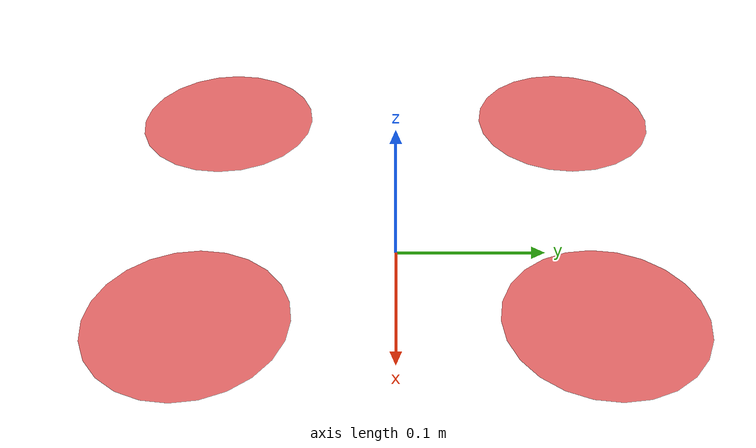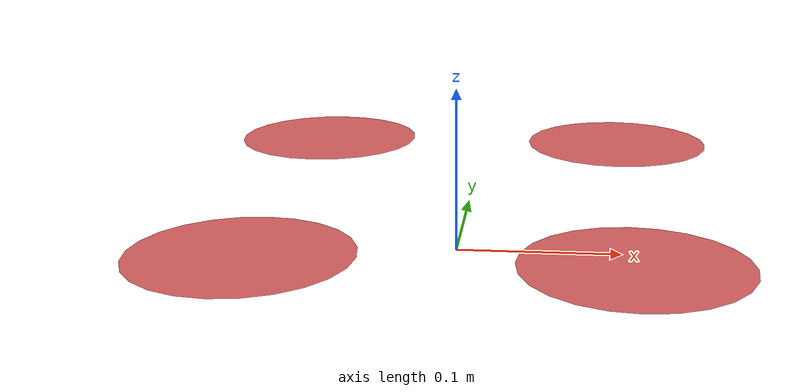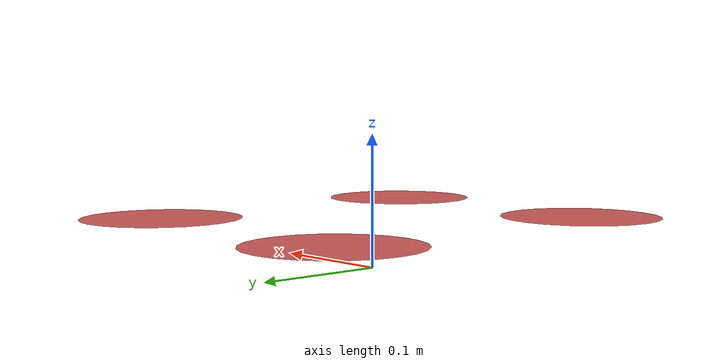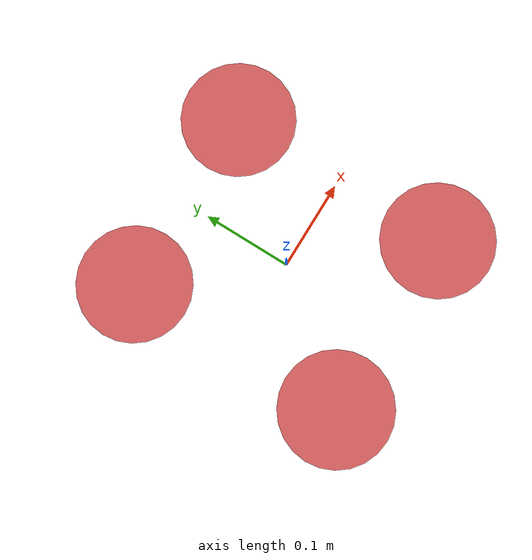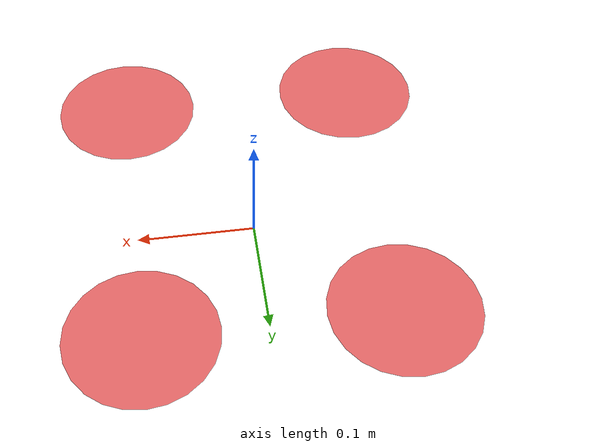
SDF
<?xml version="1.0"?>
<sdf version="1.6">
  <model name="uav">

    <plugin name="wind_plugin" filename="libgazebo_ros_force.so">
      <link_name>motor_0_link</link_name>
      <force_frame>world</force_frame>
      <topicName>wind</topicName>
      <force>6.0 0.0 0.0</force>
    </plugin>

    <plugin name="quad_motor" filename="libuav_motor_plugin.so">
      <motor_0_link>motor_0_link</motor_0_link>
      <motor_0_thrust_coeff>1.105e-5</motor_0_thrust_coeff>
      <motor_0_torque_coeff>3.558e-7</motor_0_torque_coeff>
      <motor_0_direction>1</motor_0_direction>

      <motor_1_link>motor_1_link</motor_1_link>
      <motor_1_thrust_coeff>1.105e-5</motor_1_thrust_coeff>
      <motor_1_torque_coeff>3.558e-7</motor_1_torque_coeff>
      <motor_1_direction>-1</motor_1_direction>

      <motor_2_link>motor_2_link</motor_2_link>
      <motor_2_thrust_coeff>1.105e-5</motor_2_thrust_coeff>
      <motor_2_torque_coeff>3.558e-7</motor_2_torque_coeff>
      <motor_2_direction>1</motor_2_direction>

      <motor_3_link>motor_3_link</motor_3_link>
      <motor_3_thrust_coeff>1.105e-5</motor_3_thrust_coeff>
      <motor_3_torque_coeff>3.558e-7</motor_3_torque_coeff>
      <motor_3_direction>-1</motor_3_direction>
    </plugin>

    <plugin name="odom_plugin" filename="libgazebo_ros_p3d.so">
      <ros>
        <namespace>/</namespace>
        <remapping>odom:=/odom</remapping>
      </ros>
      <body_name>body</body_name>
      <frameName>odom</frameName>
      <updateRate>1000</updateRate>
    </plugin>

    <link name="body">
      <inertial>
        <mass>1.4</mass>
        <inertia>
          <ixx>0.0211</ixx>
          <iyy>0.0219</iyy>
          <izz>0.0366</izz>
          <ixy>0</ixy>
          <ixz>0</ixz>
          <iyz>0</iyz>
        </inertia>
      </inertial>

      <collision name="collision">
        <pose>0 0 -0.02 0 0 0</pose>
        <geometry>
          <box>
            <size>0.095 0.095 0.0276</size>
          </box>
        </geometry>
      </collision>

      <sensor name="imu" type="imu">
        <always_on>true</always_on>
        <visualize>0</visualize>
        <update_rate>1000</update_rate>
        <plugin name="imu_plugin" filename="libgazebo_ros_imu_sensor.so">
          <ros>
            <namespace>drone</namespace>
            <remapping>imu:=imu</remapping>
          </ros>
          <initial_orientation_as_reference>false</initial_orientation_as_reference>
        </plugin>
        <imu>
          <angular_velocity>
            <x><noise type="gaussian"><stddev>0.0</stddev></noise></x>
            <y><noise type="gaussian"><stddev>0.0</stddev></noise></y>
            <z><noise type="gaussian"><stddev>0.0</stddev></noise></z>
          </angular_velocity>
          <linear_acceleration>
            <x><noise type="gaussian"><stddev>0.0</stddev></noise></x>
            <y><noise type="gaussian"><stddev>0.0</stddev></noise></y>
            <z><noise type="gaussian"><stddev>0.0</stddev></noise></z>
          </linear_acceleration>
        </imu>
      </sensor>

      <visual name="body">
        <geometry>
          <mesh>
            <uri>model://uav/uav.stl</uri>
            <scale>0.001 0.001 0.001</scale>
              <material>
  		<ambient>1 1 1 1</ambient>
  		<diffuse>1 1 1 1</diffuse>
  		<specular>0.4 0.4 0.4 1</specular>
	    </material>
          </mesh>
        </geometry>
      </visual>
    </link>

    <link name="motor_0_link">
      <pose>-0.1 0.12 0.038 0 0 0</pose>

      <inertial>
        <mass>0.0002</mass>
        <inertia>
          <ixx>1e-6</ixx>
          <iyy>1e-6</iyy>
          <izz>1e-6</izz>
          </inertia>
      </inertial>
      <visual name="prop0"><!-- rear left -->
        <geometry><cylinder><radius>0.06</radius><length>0</length></cylinder></geometry>
        <material><ambient>0.6 0.2 0.2 1.0</ambient><diffuse>0.9 0.4 0.4 1.0</diffuse></material>
      </visual>
    </link>

    <link name="motor_1_link">
      <pose>-0.1 -0.12 0.038 0 0 0</pose>

      <inertial>
        <mass>0.0002</mass>
        <inertia>
          <ixx>1e-6</ixx>
          <iyy>1e-6</iyy>
          <izz>1e-6</izz>
        </inertia>
      </inertial>
      <visual name="prop1"><!-- rear right -->
        <geometry><cylinder><radius>0.06</radius><length>0</length></cylinder></geometry>
        <material><ambient>0.6 0.2 0.2 1.0</ambient><diffuse>0.9 0.4 0.4 1.0</diffuse></material>
      </visual>
    </link>

    <link name="motor_2_link">
      <pose>0.1 -0.12 0.038 0 0 0</pose>

      <inertial>
        <mass>0.0002</mass>
        <inertia>
          <ixx>1e-6</ixx>
          <iyy>1e-6</iyy>
          <izz>1e-6</izz>
        </inertia>
      </inertial>

      <visual name="prop2"><!-- front right -->
        <geometry><cylinder><radius>0.06</radius><length>0</length></cylinder></geometry>
        <material><ambient>0.6 0.2 0.2 1.0</ambient><diffuse>0.9 0.4 0.4 1.0</diffuse></material>
      </visual>
    </link>

    <link name="motor_3_link">
      <pose>0.1 0.12 0.038 0 0 0</pose>

      <inertial>
        <mass>0.0002</mass>
        <inertia>
          <ixx>1e-6</ixx>
          <iyy>1e-6</iyy>
          <izz>1e-6</izz>
        </inertia>
      </inertial>

      <visual name="prop3"><!-- front right -->
        <geometry><cylinder><radius>0.06</radius><length>0</length></cylinder></geometry>
        <material><ambient>0.6 0.2 0.2 1.0</ambient><diffuse>0.9 0.4 0.4 1.0</diffuse></material>
      </visual>
    </link>

    <joint name="motor_0_joint" type="fixed">
      <parent>body</parent>
      <child>motor_0_link</child>
    </joint>

    <joint name="motor_1_joint" type="fixed">
      <parent>body</parent>
      <child>motor_1_link</child>
    </joint>

    <joint name="motor_2_joint" type="fixed">
      <parent>body</parent>
      <child>motor_2_link</child>
    </joint>

    <joint name="motor_3_joint" type="fixed">
      <parent>body</parent>
      <child>motor_3_link</child>
    </joint>
  </model>
</sdf>
